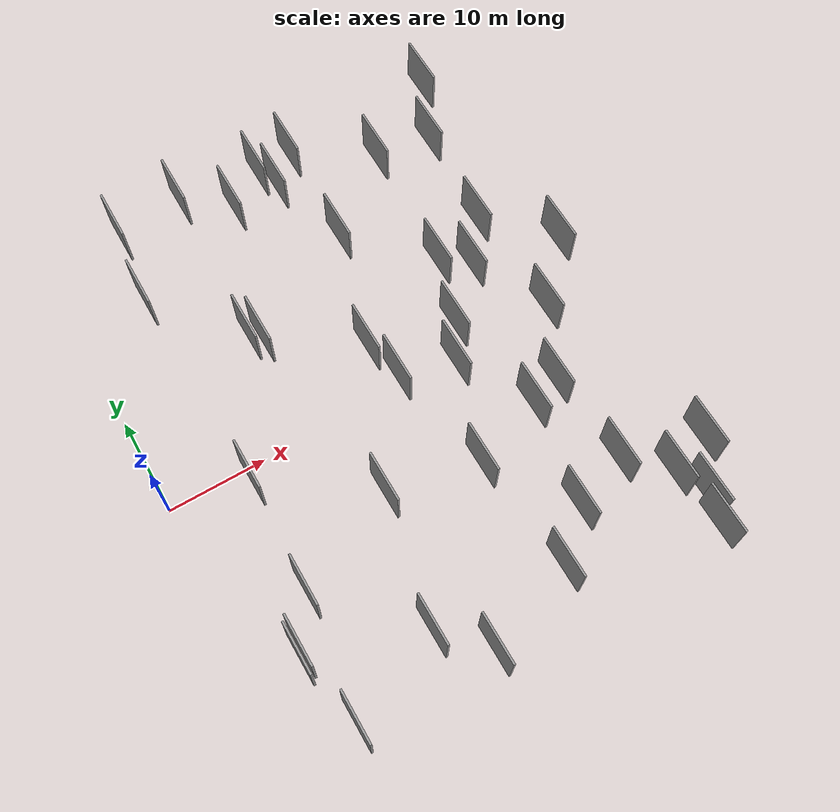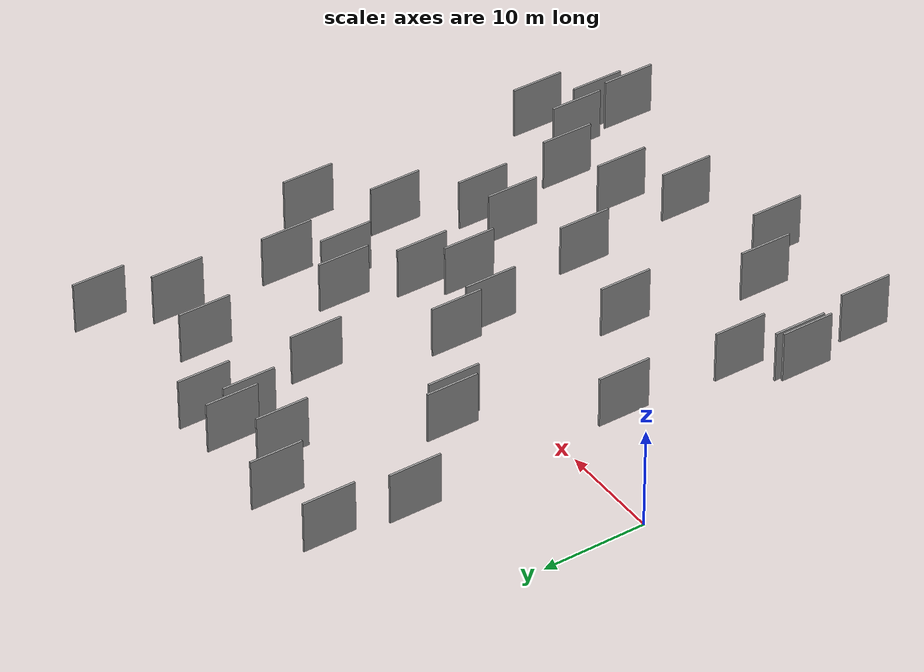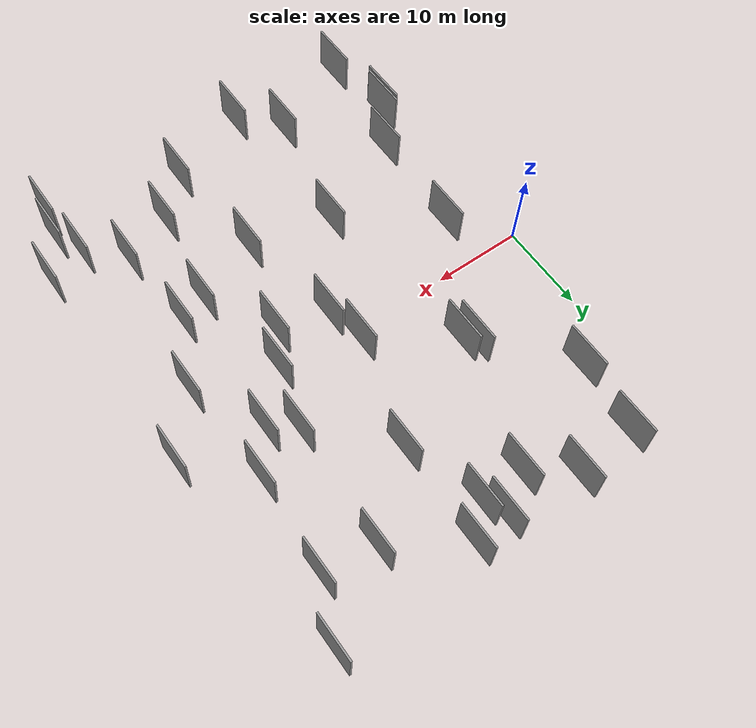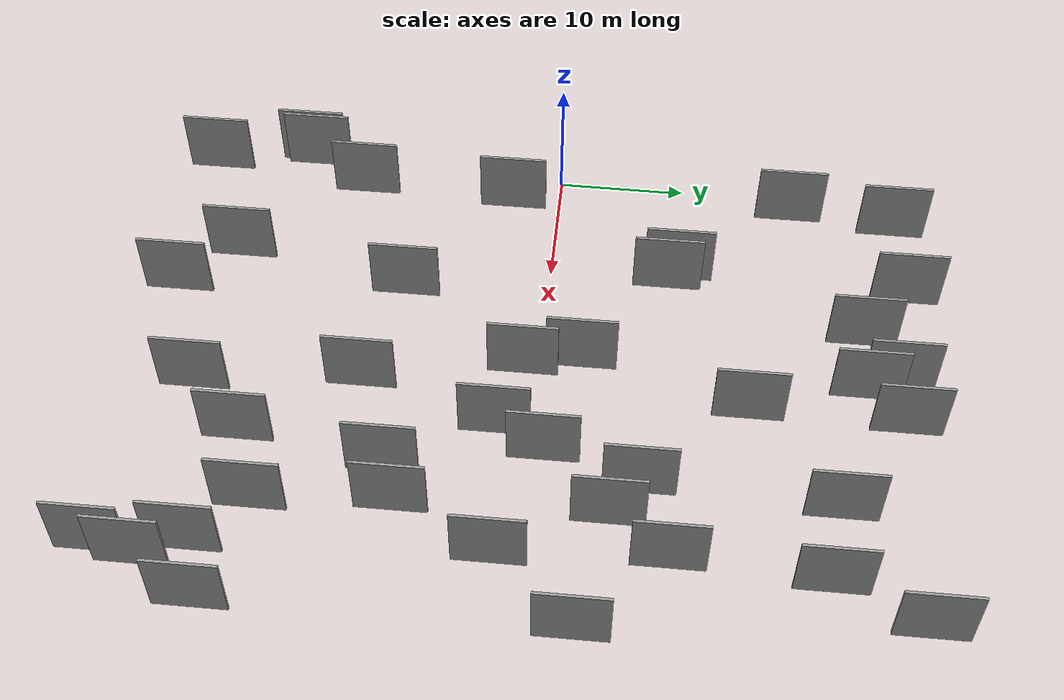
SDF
<sdf version="1.6">
 <world name="default">
  <scene>
   <sky><clouds><speed>12</speed></clouds></sky>
   <ambient>0.4 0.4 0.4 1</ambient>
   <background>0.7 0.7 0.7 1</background>
   <shadows>1</shadows>
  </scene>
  <gravity>0 0 -9.8066</gravity>
  <magnetic_field>6e-06 2.3e-05 -4.2e-05</magnetic_field>
  <physics default="0" name="default_physics" type="ode">
   <ode>
    <solver>
     <type>quick</type>
     <iters>10</iters>
     <sor>1.0</sor>
     <use_dynamic_moi_rescaling>0</use_dynamic_moi_rescaling>
    </solver>
    <constraints>
     <cfm>0</cfm>
     <erp>0.2</erp>
     <contact_max_correcting_vel>100</contact_max_correcting_vel>
     <contact_surface_layer>0.001</contact_surface_layer>
    </constraints>
   </ode>
   <max_step_size>0.004</max_step_size>
   <real_time_factor>1</real_time_factor>
   <real_time_update_rate>250</real_time_update_rate>
  </physics>
  <light name="sun" type="directional">
   <pose>0 0 10 0 0 0</pose>
   <diffuse>0.8 0.8 0.8 1</diffuse>
   <specular>0.2 0.2 0.2 1</specular>
   <attenuation>
    <range>1000</range>
    <constant>0.9</constant>
    <linear>0.01</linear>
    <quadratic>0.001</quadratic>
   </attenuation>
   <direction>-0.5 0.1 -0.9</direction>
  </light>
  <model name="grey_wall_1">
   <static>1</static>
   <pose>7.9662 25.6278 5.0 0.000000 0.000000 1.570796</pose>
   <link name="link">
    <pose>0 0 2.50 0 0 0</pose>
    <collision name="collision"><geometry><box><size>5.00 0.2 5.00</size></box></geometry></collision>
    <visual name="visual">
     <cast_shadows>0</cast_shadows>
     <geometry><box><size>5.00 0.2 5.00</size></box></geometry>
     <material>
      <script>
       <uri>model://grey_wall/materials/scripts</uri>
       <uri>model://grey_wall/materials/textures</uri>
       <name>vrc/grey_wall</name>
      </script>
     </material>
    </visual>
   </link>
  </model>
  <model name="grey_wall_2">
   <static>1</static>
   <pose>17.4288 -10.1757 5.0 0.000000 0.000000 1.570796</pose>
   <link name="link">
    <pose>0 0 2.50 0 0 0</pose>
    <collision name="collision"><geometry><box><size>5.00 0.2 5.00</size></box></geometry></collision>
    <visual name="visual">
     <cast_shadows>0</cast_shadows>
     <geometry><box><size>5.00 0.2 5.00</size></box></geometry>
     <material>
      <script>
       <uri>model://grey_wall/materials/scripts</uri>
       <uri>model://grey_wall/materials/textures</uri>
       <name>vrc/grey_wall</name>
      </script>
     </material>
    </visual>
   </link>
  </model>
  <model name="grey_wall_3">
   <static>1</static>
   <pose>31.7390 -19.7800 5.0 0.000000 0.000000 1.570796</pose>
   <link name="link">
    <pose>0 0 2.50 0 0 0</pose>
    <collision name="collision"><geometry><box><size>5.00 0.2 5.00</size></box></geometry></collision>
    <visual name="visual">
     <cast_shadows>0</cast_shadows>
     <geometry><box><size>5.00 0.2 5.00</size></box></geometry>
     <material>
      <script>
       <uri>model://grey_wall/materials/scripts</uri>
       <uri>model://grey_wall/materials/textures</uri>
       <name>vrc/grey_wall</name>
      </script>
     </material>
    </visual>
   </link>
  </model>
  <model name="grey_wall_4">
   <static>1</static>
   <pose>14.9542 8.9273 5.0 0.000000 0.000000 1.570796</pose>
   <link name="link">
    <pose>0 0 2.50 0 0 0</pose>
    <collision name="collision"><geometry><box><size>5.00 0.2 5.00</size></box></geometry></collision>
    <visual name="visual">
     <cast_shadows>0</cast_shadows>
     <geometry><box><size>5.00 0.2 5.00</size></box></geometry>
     <material>
      <script>
       <uri>model://grey_wall/materials/scripts</uri>
       <uri>model://grey_wall/materials/textures</uri>
       <name>vrc/grey_wall</name>
      </script>
     </material>
    </visual>
   </link>
  </model>
  <model name="grey_wall_5">
   <static>1</static>
   <pose>26.3158 -12.0907 5.0 0.000000 0.000000 1.570796</pose>
   <link name="link">
    <pose>0 0 2.50 0 0 0</pose>
    <collision name="collision"><geometry><box><size>5.00 0.2 5.00</size></box></geometry></collision>
    <visual name="visual">
     <cast_shadows>0</cast_shadows>
     <geometry><box><size>5.00 0.2 5.00</size></box></geometry>
     <material>
      <script>
       <uri>model://grey_wall/materials/scripts</uri>
       <uri>model://grey_wall/materials/textures</uri>
       <name>vrc/grey_wall</name>
      </script>
     </material>
    </visual>
   </link>
  </model>
  <model name="grey_wall_6">
   <static>1</static>
   <pose>44.9764 4.1764 5.0 0.000000 0.000000 1.570796</pose>
   <link name="link">
    <pose>0 0 2.50 0 0 0</pose>
    <collision name="collision"><geometry><box><size>5.00 0.2 5.00</size></box></geometry></collision>
    <visual name="visual">
     <cast_shadows>0</cast_shadows>
     <geometry><box><size>5.00 0.2 5.00</size></box></geometry>
     <material>
      <script>
       <uri>model://grey_wall/materials/scripts</uri>
       <uri>model://grey_wall/materials/textures</uri>
       <name>vrc/grey_wall</name>
      </script>
     </material>
    </visual>
   </link>
  </model>
  <model name="grey_wall_7">
   <static>1</static>
   <pose>34.2695 21.2413 5.0 0.000000 0.000000 1.570796</pose>
   <link name="link">
    <pose>0 0 2.50 0 0 0</pose>
    <collision name="collision"><geometry><box><size>5.00 0.2 5.00</size></box></geometry></collision>
    <visual name="visual">
     <cast_shadows>0</cast_shadows>
     <geometry><box><size>5.00 0.2 5.00</size></box></geometry>
     <material>
      <script>
       <uri>model://grey_wall/materials/scripts</uri>
       <uri>model://grey_wall/materials/textures</uri>
       <name>vrc/grey_wall</name>
      </script>
     </material>
    </visual>
   </link>
  </model>
  <model name="grey_wall_8">
   <static>1</static>
   <pose>31.4696 1.2209 5.0 0.000000 0.000000 1.570796</pose>
   <link name="link">
    <pose>0 0 2.50 0 0 0</pose>
    <collision name="collision"><geometry><box><size>5.00 0.2 5.00</size></box></geometry></collision>
    <visual name="visual">
     <cast_shadows>0</cast_shadows>
     <geometry><box><size>5.00 0.2 5.00</size></box></geometry>
     <material>
      <script>
       <uri>model://grey_wall/materials/scripts</uri>
       <uri>model://grey_wall/materials/textures</uri>
       <name>vrc/grey_wall</name>
      </script>
     </material>
    </visual>
   </link>
  </model>
  <model name="grey_wall_9">
   <static>1</static>
   <pose>13.9549 9.7261 5.0 0.000000 0.000000 1.570796</pose>
   <link name="link">
    <pose>0 0 2.50 0 0 0</pose>
    <collision name="collision"><geometry><box><size>5.00 0.2 5.00</size></box></geometry></collision>
    <visual name="visual">
     <cast_shadows>0</cast_shadows>
     <geometry><box><size>5.00 0.2 5.00</size></box></geometry>
     <material>
      <script>
       <uri>model://grey_wall/materials/scripts</uri>
       <uri>model://grey_wall/materials/textures</uri>
       <name>vrc/grey_wall</name>
      </script>
     </material>
    </visual>
   </link>
  </model>
  <model name="grey_wall_10">
   <static>1</static>
   <pose>39.9414 -1.5383 5.0 0.000000 0.000000 1.570796</pose>
   <link name="link">
    <pose>0 0 2.50 0 0 0</pose>
    <collision name="collision"><geometry><box><size>5.00 0.2 5.00</size></box></geometry></collision>
    <visual name="visual">
     <cast_shadows>0</cast_shadows>
     <geometry><box><size>5.00 0.2 5.00</size></box></geometry>
     <material>
      <script>
       <uri>model://grey_wall/materials/scripts</uri>
       <uri>model://grey_wall/materials/textures</uri>
       <name>vrc/grey_wall</name>
      </script>
     </material>
    </visual>
   </link>
  </model>
  <model name="grey_wall_11">
   <static>1</static>
   <pose>42.2386 -24.5002 5.0 0.000000 0.000000 1.570796</pose>
   <link name="link">
    <pose>0 0 2.50 0 0 0</pose>
    <collision name="collision"><geometry><box><size>5.00 0.2 5.00</size></box></geometry></collision>
    <visual name="visual">
     <cast_shadows>0</cast_shadows>
     <geometry><box><size>5.00 0.2 5.00</size></box></geometry>
     <material>
      <script>
       <uri>model://grey_wall/materials/scripts</uri>
       <uri>model://grey_wall/materials/textures</uri>
       <name>vrc/grey_wall</name>
      </script>
     </material>
    </visual>
   </link>
  </model>
  <model name="grey_wall_12">
   <static>1</static>
   <pose>23.9651 23.2438 5.0 0.000000 0.000000 1.570796</pose>
   <link name="link">
    <pose>0 0 2.50 0 0 0</pose>
    <collision name="collision"><geometry><box><size>5.00 0.2 5.00</size></box></geometry></collision>
    <visual name="visual">
     <cast_shadows>0</cast_shadows>
     <geometry><box><size>5.00 0.2 5.00</size></box></geometry>
     <material>
      <script>
       <uri>model://grey_wall/materials/scripts</uri>
       <uri>model://grey_wall/materials/textures</uri>
       <name>vrc/grey_wall</name>
      </script>
     </material>
    </visual>
   </link>
  </model>
  <model name="grey_wall_13">
   <static>1</static>
   <pose>24.0621 -0.8791 5.0 0.000000 0.000000 1.570796</pose>
   <link name="link">
    <pose>0 0 2.50 0 0 0</pose>
    <collision name="collision"><geometry><box><size>5.00 0.2 5.00</size></box></geometry></collision>
    <visual name="visual">
     <cast_shadows>0</cast_shadows>
     <geometry><box><size>5.00 0.2 5.00</size></box></geometry>
     <material>
      <script>
       <uri>model://grey_wall/materials/scripts</uri>
       <uri>model://grey_wall/materials/textures</uri>
       <name>vrc/grey_wall</name>
      </script>
     </material>
    </visual>
   </link>
  </model>
  <model name="grey_wall_14">
   <static>1</static>
   <pose>14.7877 -22.8990 5.0 0.000000 0.000000 1.570796</pose>
   <link name="link">
    <pose>0 0 2.50 0 0 0</pose>
    <collision name="collision"><geometry><box><size>5.00 0.2 5.00</size></box></geometry></collision>
    <visual name="visual">
     <cast_shadows>0</cast_shadows>
     <geometry><box><size>5.00 0.2 5.00</size></box></geometry>
     <material>
      <script>
       <uri>model://grey_wall/materials/scripts</uri>
       <uri>model://grey_wall/materials/textures</uri>
       <name>vrc/grey_wall</name>
      </script>
     </material>
    </visual>
   </link>
  </model>
  <model name="grey_wall_15">
   <static>1</static>
   <pose>7.6786 -3.1978 5.0 0.000000 0.000000 1.570796</pose>
   <link name="link">
    <pose>0 0 2.50 0 0 0</pose>
    <collision name="collision"><geometry><box><size>5.00 0.2 5.00</size></box></geometry></collision>
    <visual name="visual">
     <cast_shadows>0</cast_shadows>
     <geometry><box><size>5.00 0.2 5.00</size></box></geometry>
     <material>
      <script>
       <uri>model://grey_wall/materials/scripts</uri>
       <uri>model://grey_wall/materials/textures</uri>
       <name>vrc/grey_wall</name>
      </script>
     </material>
    </visual>
   </link>
  </model>
  <model name="grey_wall_16">
   <static>1</static>
   <pose>26.7838 25.9021 5.0 0.000000 0.000000 1.570796</pose>
   <link name="link">
    <pose>0 0 2.50 0 0 0</pose>
    <collision name="collision"><geometry><box><size>5.00 0.2 5.00</size></box></geometry></collision>
    <visual name="visual">
     <cast_shadows>0</cast_shadows>
     <geometry><box><size>5.00 0.2 5.00</size></box></geometry>
     <material>
      <script>
       <uri>model://grey_wall/materials/scripts</uri>
       <uri>model://grey_wall/materials/textures</uri>
       <name>vrc/grey_wall</name>
      </script>
     </material>
    </visual>
   </link>
  </model>
  <model name="grey_wall_17">
   <static>1</static>
   <pose>27.5749 -23.7502 5.0 0.000000 0.000000 1.570796</pose>
   <link name="link">
    <pose>0 0 2.50 0 0 0</pose>
    <collision name="collision"><geometry><box><size>5.00 0.2 5.00</size></box></geometry></collision>
    <visual name="visual">
     <cast_shadows>0</cast_shadows>
     <geometry><box><size>5.00 0.2 5.00</size></box></geometry>
     <material>
      <script>
       <uri>model://grey_wall/materials/scripts</uri>
       <uri>model://grey_wall/materials/textures</uri>
       <name>vrc/grey_wall</name>
      </script>
     </material>
    </visual>
   </link>
  </model>
  <model name="grey_wall_18">
   <static>1</static>
   <pose>18.5863 -26.9090 5.0 0.000000 0.000000 1.570796</pose>
   <link name="link">
    <pose>0 0 2.50 0 0 0</pose>
    <collision name="collision"><geometry><box><size>5.00 0.2 5.00</size></box></geometry></collision>
    <visual name="visual">
     <cast_shadows>0</cast_shadows>
     <geometry><box><size>5.00 0.2 5.00</size></box></geometry>
     <material>
      <script>
       <uri>model://grey_wall/materials/scripts</uri>
       <uri>model://grey_wall/materials/textures</uri>
       <name>vrc/grey_wall</name>
      </script>
     </material>
    </visual>
   </link>
  </model>
  <model name="grey_wall_19">
   <static>1</static>
   <pose>22.9480 25.5304 5.0 0.000000 0.000000 1.570796</pose>
   <link name="link">
    <pose>0 0 2.50 0 0 0</pose>
    <collision name="collision"><geometry><box><size>5.00 0.2 5.00</size></box></geometry></collision>
    <visual name="visual">
     <cast_shadows>0</cast_shadows>
     <geometry><box><size>5.00 0.2 5.00</size></box></geometry>
     <material>
      <script>
       <uri>model://grey_wall/materials/scripts</uri>
       <uri>model://grey_wall/materials/textures</uri>
       <name>vrc/grey_wall</name>
      </script>
     </material>
    </visual>
   </link>
  </model>
  <model name="grey_wall_20">
   <static>1</static>
   <pose>45.0355 -19.9934 5.0 0.000000 0.000000 1.570796</pose>
   <link name="link">
    <pose>0 0 2.50 0 0 0</pose>
    <collision name="collision"><geometry><box><size>5.00 0.2 5.00</size></box></geometry></collision>
    <visual name="visual">
     <cast_shadows>0</cast_shadows>
     <geometry><box><size>5.00 0.2 5.00</size></box></geometry>
     <material>
      <script>
       <uri>model://grey_wall/materials/scripts</uri>
       <uri>model://grey_wall/materials/textures</uri>
       <name>vrc/grey_wall</name>
      </script>
     </material>
    </visual>
   </link>
  </model>
  <model name="grey_wall_21">
   <static>1</static>
   <pose>14.7298 26.3691 5.0 0.000000 0.000000 1.570796</pose>
   <link name="link">
    <pose>0 0 2.50 0 0 0</pose>
    <collision name="collision"><geometry><box><size>5.00 0.2 5.00</size></box></geometry></collision>
    <visual name="visual">
     <cast_shadows>0</cast_shadows>
     <geometry><box><size>5.00 0.2 5.00</size></box></geometry>
     <material>
      <script>
       <uri>model://grey_wall/materials/scripts</uri>
       <uri>model://grey_wall/materials/textures</uri>
       <name>vrc/grey_wall</name>
      </script>
     </material>
    </visual>
   </link>
  </model>
  <model name="grey_wall_22">
   <static>1</static>
   <pose>36.1924 5.9278 5.0 0.000000 0.000000 1.570796</pose>
   <link name="link">
    <pose>0 0 2.50 0 0 0</pose>
    <collision name="collision"><geometry><box><size>5.00 0.2 5.00</size></box></geometry></collision>
    <visual name="visual">
     <cast_shadows>0</cast_shadows>
     <geometry><box><size>5.00 0.2 5.00</size></box></geometry>
     <material>
      <script>
       <uri>model://grey_wall/materials/scripts</uri>
       <uri>model://grey_wall/materials/textures</uri>
       <name>vrc/grey_wall</name>
      </script>
     </material>
    </visual>
   </link>
  </model>
  <model name="grey_wall_23">
   <static>1</static>
   <pose>39.2225 10.0013 5.0 0.000000 0.000000 1.570796</pose>
   <link name="link">
    <pose>0 0 2.50 0 0 0</pose>
    <collision name="collision"><geometry><box><size>5.00 0.2 5.00</size></box></geometry></collision>
    <visual name="visual">
     <cast_shadows>0</cast_shadows>
     <geometry><box><size>5.00 0.2 5.00</size></box></geometry>
     <material>
      <script>
       <uri>model://grey_wall/materials/scripts</uri>
       <uri>model://grey_wall/materials/textures</uri>
       <name>vrc/grey_wall</name>
      </script>
     </material>
    </visual>
   </link>
  </model>
  <model name="grey_wall_24">
   <static>1</static>
   <pose>42.7109 26.5847 5.0 0.000000 0.000000 1.570796</pose>
   <link name="link">
    <pose>0 0 2.50 0 0 0</pose>
    <collision name="collision"><geometry><box><size>5.00 0.2 5.00</size></box></geometry></collision>
    <visual name="visual">
     <cast_shadows>0</cast_shadows>
     <geometry><box><size>5.00 0.2 5.00</size></box></geometry>
     <material>
      <script>
       <uri>model://grey_wall/materials/scripts</uri>
       <uri>model://grey_wall/materials/textures</uri>
       <name>vrc/grey_wall</name>
      </script>
     </material>
    </visual>
   </link>
  </model>
  <model name="grey_wall_25">
   <static>1</static>
   <pose>5.4973 -26.5228 5.0 0.000000 0.000000 1.570796</pose>
   <link name="link">
    <pose>0 0 2.50 0 0 0</pose>
    <collision name="collision"><geometry><box><size>5.00 0.2 5.00</size></box></geometry></collision>
    <visual name="visual">
     <cast_shadows>0</cast_shadows>
     <geometry><box><size>5.00 0.2 5.00</size></box></geometry>
     <material>
      <script>
       <uri>model://grey_wall/materials/scripts</uri>
       <uri>model://grey_wall/materials/textures</uri>
       <name>vrc/grey_wall</name>
      </script>
     </material>
    </visual>
   </link>
  </model>
  <model name="grey_wall_26">
   <static>1</static>
   <pose>33.5200 7.8382 5.0 0.000000 0.000000 1.570796</pose>
   <link name="link">
    <pose>0 0 2.50 0 0 0</pose>
    <collision name="collision"><geometry><box><size>5.00 0.2 5.00</size></box></geometry></collision>
    <visual name="visual">
     <cast_shadows>0</cast_shadows>
     <geometry><box><size>5.00 0.2 5.00</size></box></geometry>
     <material>
      <script>
       <uri>model://grey_wall/materials/scripts</uri>
       <uri>model://grey_wall/materials/textures</uri>
       <name>vrc/grey_wall</name>
      </script>
     </material>
    </visual>
   </link>
  </model>
  <model name="grey_wall_27">
   <static>1</static>
   <pose>23.1213 3.2013 5.0 0.000000 0.000000 1.570796</pose>
   <link name="link">
    <pose>0 0 2.50 0 0 0</pose>
    <collision name="collision"><geometry><box><size>5.00 0.2 5.00</size></box></geometry></collision>
    <visual name="visual">
     <cast_shadows>0</cast_shadows>
     <geometry><box><size>5.00 0.2 5.00</size></box></geometry>
     <material>
      <script>
       <uri>model://grey_wall/materials/scripts</uri>
       <uri>model://grey_wall/materials/textures</uri>
       <name>vrc/grey_wall</name>
      </script>
     </material>
    </visual>
   </link>
  </model>
  <model name="grey_wall_28">
   <static>1</static>
   <pose>7.0568 17.9147 5.0 0.000000 0.000000 1.570796</pose>
   <link name="link">
    <pose>0 0 2.50 0 0 0</pose>
    <collision name="collision"><geometry><box><size>5.00 0.2 5.00</size></box></geometry></collision>
    <visual name="visual">
     <cast_shadows>0</cast_shadows>
     <geometry><box><size>5.00 0.2 5.00</size></box></geometry>
     <material>
      <script>
       <uri>model://grey_wall/materials/scripts</uri>
       <uri>model://grey_wall/materials/textures</uri>
       <name>vrc/grey_wall</name>
      </script>
     </material>
    </visual>
   </link>
  </model>
  <model name="grey_wall_29">
   <static>1</static>
   <pose>19.1136 23.0849 5.0 0.000000 0.000000 1.570796</pose>
   <link name="link">
    <pose>0 0 2.50 0 0 0</pose>
    <collision name="collision"><geometry><box><size>5.00 0.2 5.00</size></box></geometry></collision>
    <visual name="visual">
     <cast_shadows>0</cast_shadows>
     <geometry><box><size>5.00 0.2 5.00</size></box></geometry>
     <material>
      <script>
       <uri>model://grey_wall/materials/scripts</uri>
       <uri>model://grey_wall/materials/textures</uri>
       <name>vrc/grey_wall</name>
      </script>
     </material>
    </visual>
   </link>
  </model>
  <model name="grey_wall_30">
   <static>1</static>
   <pose>7.1251 -14.6540 5.0 0.000000 0.000000 1.570796</pose>
   <link name="link">
    <pose>0 0 2.50 0 0 0</pose>
    <collision name="collision"><geometry><box><size>5.00 0.2 5.00</size></box></geometry></collision>
    <visual name="visual">
     <cast_shadows>0</cast_shadows>
     <geometry><box><size>5.00 0.2 5.00</size></box></geometry>
     <material>
      <script>
       <uri>model://grey_wall/materials/scripts</uri>
       <uri>model://grey_wall/materials/textures</uri>
       <name>vrc/grey_wall</name>
      </script>
     </material>
    </visual>
   </link>
  </model>
  <model name="grey_wall_31">
   <static>1</static>
   <pose>4.0018 -19.3741 5.0 0.000000 0.000000 1.570796</pose>
   <link name="link">
    <pose>0 0 2.50 0 0 0</pose>
    <collision name="collision"><geometry><box><size>5.00 0.2 5.00</size></box></geometry></collision>
    <visual name="visual">
     <cast_shadows>0</cast_shadows>
     <geometry><box><size>5.00 0.2 5.00</size></box></geometry>
     <material>
      <script>
       <uri>model://grey_wall/materials/scripts</uri>
       <uri>model://grey_wall/materials/textures</uri>
       <name>vrc/grey_wall</name>
      </script>
     </material>
    </visual>
   </link>
  </model>
  <model name="grey_wall_32">
   <static>1</static>
   <pose>40.8592 -21.3382 5.0 0.000000 0.000000 1.570796</pose>
   <link name="link">
    <pose>0 0 2.50 0 0 0</pose>
    <collision name="collision"><geometry><box><size>5.00 0.2 5.00</size></box></geometry></collision>
    <visual name="visual">
     <cast_shadows>0</cast_shadows>
     <geometry><box><size>5.00 0.2 5.00</size></box></geometry>
     <material>
      <script>
       <uri>model://grey_wall/materials/scripts</uri>
       <uri>model://grey_wall/materials/textures</uri>
       <name>vrc/grey_wall</name>
      </script>
     </material>
    </visual>
   </link>
  </model>
  <model name="grey_wall_33">
   <static>1</static>
   <pose>39.9774 20.4674 5.0 0.000000 0.000000 1.570796</pose>
   <link name="link">
    <pose>0 0 2.50 0 0 0</pose>
    <collision name="collision"><geometry><box><size>5.00 0.2 5.00</size></box></geometry></collision>
    <visual name="visual">
     <cast_shadows>0</cast_shadows>
     <geometry><box><size>5.00 0.2 5.00</size></box></geometry>
     <material>
      <script>
       <uri>model://grey_wall/materials/scripts</uri>
       <uri>model://grey_wall/materials/textures</uri>
       <name>vrc/grey_wall</name>
      </script>
     </material>
    </visual>
   </link>
  </model>
  <model name="grey_wall_34">
   <static>1</static>
   <pose>41.5047 -27.3454 5.0 0.000000 0.000000 1.570796</pose>
   <link name="link">
    <pose>0 0 2.50 0 0 0</pose>
    <collision name="collision"><geometry><box><size>5.00 0.2 5.00</size></box></geometry></collision>
    <visual name="visual">
     <cast_shadows>0</cast_shadows>
     <geometry><box><size>5.00 0.2 5.00</size></box></geometry>
     <material>
      <script>
       <uri>model://grey_wall/materials/scripts</uri>
       <uri>model://grey_wall/materials/textures</uri>
       <name>vrc/grey_wall</name>
      </script>
     </material>
    </visual>
   </link>
  </model>
  <model name="grey_wall_35">
   <static>1</static>
   <pose>37.2322 -17.7998 5.0 0.000000 0.000000 1.570796</pose>
   <link name="link">
    <pose>0 0 2.50 0 0 0</pose>
    <collision name="collision"><geometry><box><size>5.00 0.2 5.00</size></box></geometry></collision>
    <visual name="visual">
     <cast_shadows>0</cast_shadows>
     <geometry><box><size>5.00 0.2 5.00</size></box></geometry>
     <material>
      <script>
       <uri>model://grey_wall/materials/scripts</uri>
       <uri>model://grey_wall/materials/textures</uri>
       <name>vrc/grey_wall</name>
      </script>
     </material>
    </visual>
   </link>
  </model>
  <model name="grey_wall_36">
   <static>1</static>
   <pose>4.3891 -18.8638 5.0 0.000000 0.000000 1.570796</pose>
   <link name="link">
    <pose>0 0 2.50 0 0 0</pose>
    <collision name="collision"><geometry><box><size>5.00 0.2 5.00</size></box></geometry></collision>
    <visual name="visual">
     <cast_shadows>0</cast_shadows>
     <geometry><box><size>5.00 0.2 5.00</size></box></geometry>
     <material>
      <script>
       <uri>model://grey_wall/materials/scripts</uri>
       <uri>model://grey_wall/materials/textures</uri>
       <name>vrc/grey_wall</name>
      </script>
     </material>
    </visual>
   </link>
  </model>
  <model name="grey_wall_37">
   <static>1</static>
   <pose>26.5716 15.0302 5.0 0.000000 0.000000 1.570796</pose>
   <link name="link">
    <pose>0 0 2.50 0 0 0</pose>
    <collision name="collision"><geometry><box><size>5.00 0.2 5.00</size></box></geometry></collision>
    <visual name="visual">
     <cast_shadows>0</cast_shadows>
     <geometry><box><size>5.00 0.2 5.00</size></box></geometry>
     <material>
      <script>
       <uri>model://grey_wall/materials/scripts</uri>
       <uri>model://grey_wall/materials/textures</uri>
       <name>vrc/grey_wall</name>
      </script>
     </material>
    </visual>
   </link>
  </model>
  <model name="grey_wall_38">
   <static>1</static>
   <pose>36.5190 -8.4521 5.0 0.000000 0.000000 1.570796</pose>
   <link name="link">
    <pose>0 0 2.50 0 0 0</pose>
    <collision name="collision"><geometry><box><size>5.00 0.2 5.00</size></box></geometry></collision>
    <visual name="visual">
     <cast_shadows>0</cast_shadows>
     <geometry><box><size>5.00 0.2 5.00</size></box></geometry>
     <material>
      <script>
       <uri>model://grey_wall/materials/scripts</uri>
       <uri>model://grey_wall/materials/textures</uri>
       <name>vrc/grey_wall</name>
      </script>
     </material>
    </visual>
   </link>
  </model>
  <model name="grey_wall_39">
   <static>1</static>
   <pose>33.4549 -9.4851 5.0 0.000000 0.000000 1.570796</pose>
   <link name="link">
    <pose>0 0 2.50 0 0 0</pose>
    <collision name="collision"><geometry><box><size>5.00 0.2 5.00</size></box></geometry></collision>
    <visual name="visual">
     <cast_shadows>0</cast_shadows>
     <geometry><box><size>5.00 0.2 5.00</size></box></geometry>
     <material>
      <script>
       <uri>model://grey_wall/materials/scripts</uri>
       <uri>model://grey_wall/materials/textures</uri>
       <name>vrc/grey_wall</name>
      </script>
     </material>
    </visual>
   </link>
  </model>
  <model name="grey_wall_40">
   <static>1</static>
   <pose>29.4906 -2.3019 5.0 0.000000 0.000000 1.570796</pose>
   <link name="link">
    <pose>0 0 2.50 0 0 0</pose>
    <collision name="collision"><geometry><box><size>5.00 0.2 5.00</size></box></geometry></collision>
    <visual name="visual">
     <cast_shadows>0</cast_shadows>
     <geometry><box><size>5.00 0.2 5.00</size></box></geometry>
     <material>
      <script>
       <uri>model://grey_wall/materials/scripts</uri>
       <uri>model://grey_wall/materials/textures</uri>
       <name>vrc/grey_wall</name>
      </script>
     </material>
    </visual>
   </link>
  </model>
 </world>
</sdf>
